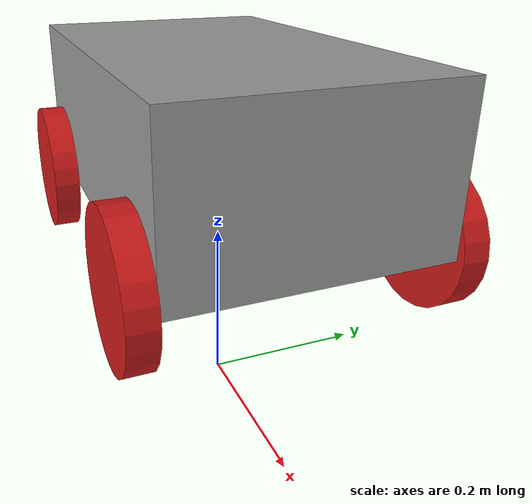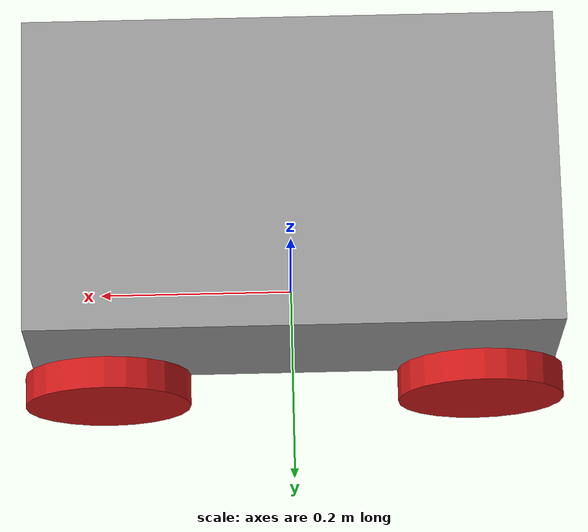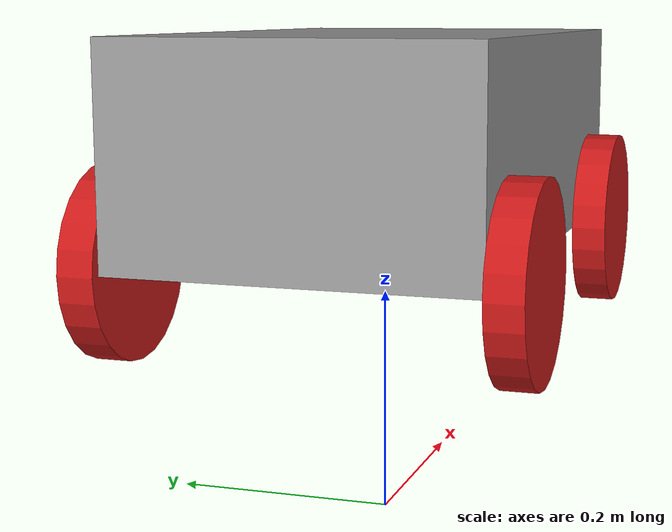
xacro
<?xml version="1.0"?>
<robot xmlns:xacro="http://www.ros.org/wiki/xacro"  name="robot">

    <xacro:arg name="use_ros2_control" default="true"/>
    <xacro:arg name="sim_mode" default="false"/>

    <xacro:include filename="diffbot_core.xacro" />

    <xacro:if value="$(arg use_ros2_control)">
        <xacro:include filename="../ros2_control/ros2_control.xacro" />
    </xacro:if>

</robot>

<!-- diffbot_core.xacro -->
<robot xmlns:xacro="http://www.ros.org/wiki/xacro">

  <material name="gray"><color rgba="0.6 0.6 0.6 1.0"/></material>
  <material name="black"><color rgba="0.05 0.05 0.05 1.0"/></material>
  <material name="red"><color rgba="0.8 0.1 0.1 1.0"/></material>
  <material name="blue"><color rgba="0.2 0.2 1.0 1.0"/></material>

  <xacro:property name="base_x" value="0.50"/>
  <xacro:property name="base_y" value="0.30"/>
  <xacro:property name="base_z" value="0.18"/>

  <xacro:property name="wheel_r" value="0.08"/>
  <!-- base_link is located above the ground by wheel radius + half the base height -->
  <xacro:property name="base_z_origin" value="${wheel_r + base_z/2}"/>

  <xacro:property name="wheel_w" value="0.03"/>

  <xacro:property name="wheel_x_front" value="0.18"/>
  <xacro:property name="wheel_x_rear"  value="-0.18"/>
  <xacro:property name="wheel_y" value="${base_y/2 + wheel_w/2}"/>
  <xacro:property name="wheel_z" value="${wheel_r}"/>

  <!-- 2D ground-projected base frame -->
  <link name="base_footprint"/>

  <!-- Body frame -->
  <link name="base_link">
    <visual>
      <origin xyz="0 0 ${base_z_origin}" rpy="0 0 0"/>
      <geometry><box size="${base_x} ${base_y} ${base_z}"/></geometry>
      <material name="gray"/>
    </visual>
  </link>

  <!-- base_footprint -> base_link (base_link sits above ground) -->
  <joint name="base_footprint_joint" type="fixed">
    <parent link="base_footprint"/>
    <child link="base_link"/>
    <origin xyz="0 0 ${base_z_origin}" rpy="0 0 0"/>
  </joint>

  <!-- WHEELS -->
  <xacro:macro name="wheel_link" params="name">
    <link name="${name}">
      <visual>
        <origin xyz="0 0 0" rpy="${pi/2} 0 0"/>
        <geometry><cylinder radius="${wheel_r}" length="${wheel_w}"/></geometry>
        <material name="red"/>
      </visual>
    </link>

  </xacro:macro>

  <xacro:wheel_link name="front_left_wheel"/>
  <xacro:wheel_link name="front_right_wheel"/>
  <xacro:wheel_link name="rear_left_wheel"/>
  <xacro:wheel_link name="rear_right_wheel"/>

  <joint name="front_left_wheel_joint" type="continuous">
    <parent link="base_link"/>
    <child link="front_left_wheel"/>
    <origin xyz="${wheel_x_front} ${wheel_y} ${wheel_z}" rpy="0 0 0"/>
    <axis xyz="0 1 0"/>
  </joint>

  <joint name="front_right_wheel_joint" type="continuous">
    <parent link="base_link"/>
    <child link="front_right_wheel"/>
    <origin xyz="${wheel_x_front} -${wheel_y} ${wheel_z}" rpy="0 0 0"/>
    <axis xyz="0 1 0"/>
  </joint>

  <joint name="rear_left_wheel_joint" type="continuous">
    <parent link="base_link"/>
    <child link="rear_left_wheel"/>
    <origin xyz="${wheel_x_rear} ${wheel_y} ${wheel_z}" rpy="0 0 0"/>
    <axis xyz="0 1 0"/>
  </joint>

  <joint name="rear_right_wheel_joint" type="continuous">
    <parent link="base_link"/>
    <child link="rear_right_wheel"/>
    <origin xyz="${wheel_x_rear} -${wheel_y} ${wheel_z}" rpy="0 0 0"/>
    <axis xyz="0 1 0"/>
  </joint>

</robot>
